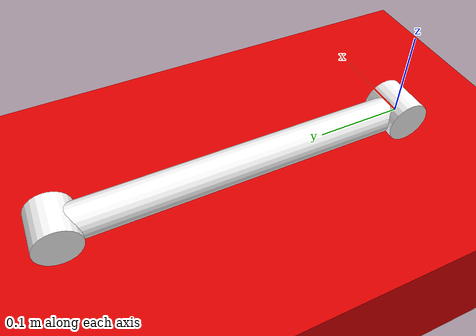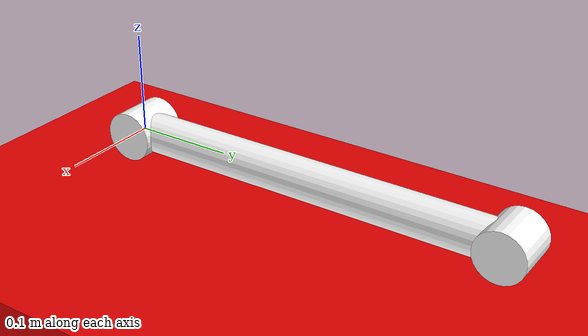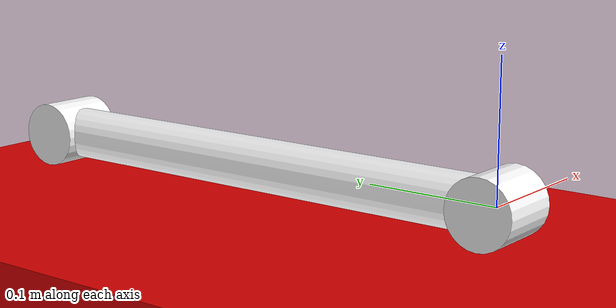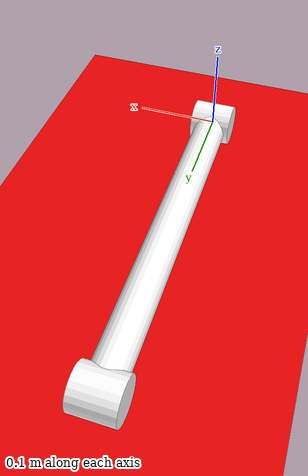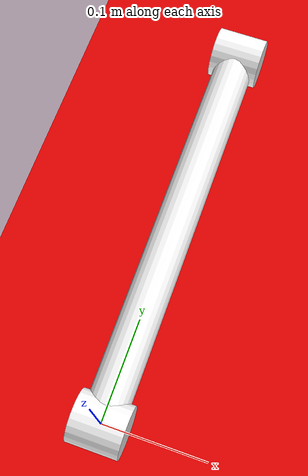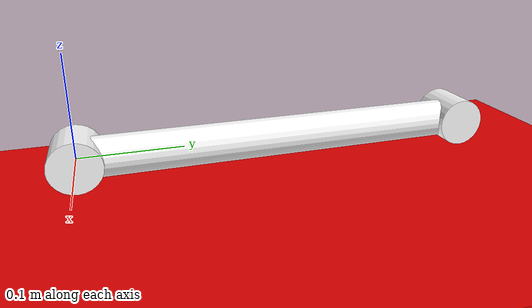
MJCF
<mujoco>
    <compiler inertiafromgeom="true"/>
    <option timestep="0.002" />
    <asset>
        <material name="blue_" rgba="0 0 1 1" />
        <material name="green" rgba="0 1 0 1" />
        <material name="red__" rgba="1 0 0 1" />
        <material name="white" rgba="1 1 1 1" />
    </asset>
    <worldbody>
        <geom name="floor" type="box" size="2 2 0.1" pos="0 0 -0.15" rgba=".9 0 0 1" />
        <body name="link_4" pos="0.0 0 0." euler="0 0 0">
            <joint name="hinge_3" pos="0 0 0" axis="1 0 0" />
            <geom type="cylinder" size=".02    0.2" pos="0 0.2 0" euler="90 0 0" material="white" />
            <geom type="cylinder" size=".025 .025" pos="0 0 0" euler="0 90 0" material="white" />
            <geom type="cylinder" size=".025 .025" pos="0 0.4 0" euler="0 90 0" material="white" />
        </body>
    </worldbody>
</mujoco>
